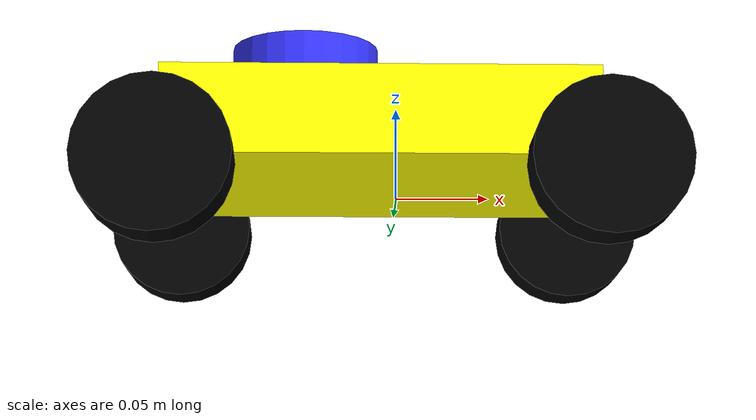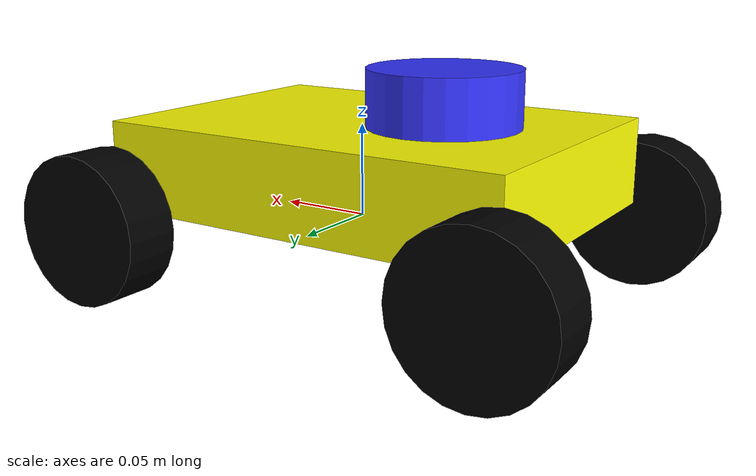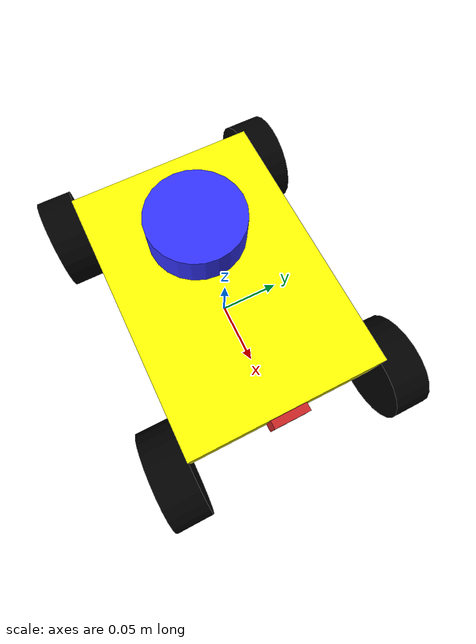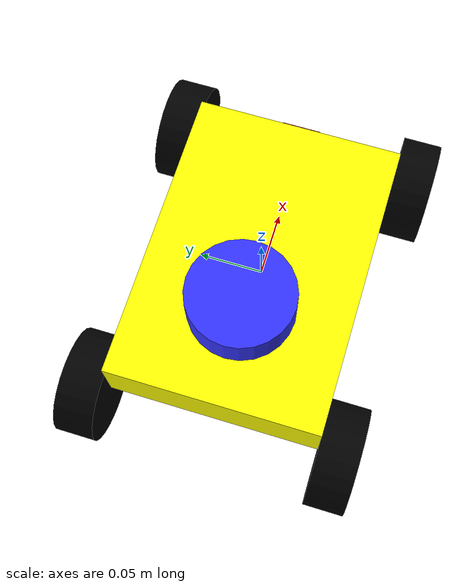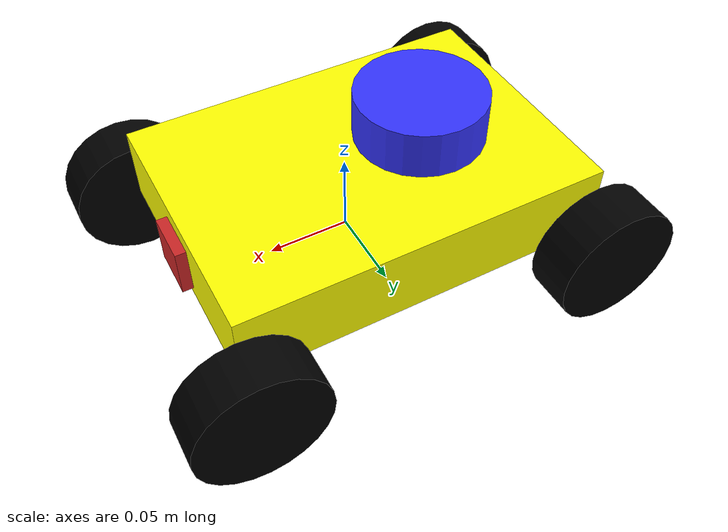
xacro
<?xml version="1.0"?>
<robot xmlns:xacro="http://www.ros.org/wiki/xacro" name="rover">
<xacro:include filename="gazebo_plugins.xacro" />
<xacro:include filename="ros2_control.xacro" />
<xacro:include filename="robot_core2.xacro" />
<xacro:include filename="lidar.xacro" />
<xacro:include filename="camera.xacro" />

</robot>

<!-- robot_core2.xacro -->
<robot xmlns:xacro="http://www.ros.org/wiki/xacro">
<xacro:property name="c1"       value="0.227"/>
<xacro:property name="c2"       value="0.5"/>
<xacro:property name="mass"     value="0.5"/>
<xacro:property name="width"    value="0.16"/>
<xacro:property name="height"   value="0.047"/>
<xacro:property name="depth"    value="0.03 "/>
<xacro:property name="radius"   value="0.04 "/>
    <!-- COLORS -->
    <material name="yellow">
        <color rgba=" 1 1 0 1"/>
    </material>

    <material name="black">
        <color rgba="0 0 0 1"/>
    </material>

    <material name="Blue">
        <color rgba=" 0.2 0.2 1 1"/>
    </material>

    <material name="orange">
        <color rgba="1 0.3 0.1 1"/>
    </material>
    <link name="base_footprint">

    </link>

    <joint name="base_joint" type="fixed">
        <parent link="base_footprint" />
        <child link="base_link" />
        <origin xyz="-0.01 0 0" />
    </joint>

    <link name="base_link">

        <visual>
            <origin xyz="0 0 0.03" />
            <geometry>
                <box size ="0.227 0.16 0.047" />
            </geometry>
            <material name="yellow" />

        </visual>
         <collision>
            <origin xyz="0 0 0.03" />
            <geometry>
                <box size ="0.227 0.16 0.047" />
            </geometry>
        </collision>
        <inertial mass="0.5" x="0.227" y="0.16" z="0.047">
            <mass value="0.5"/>
            <origin xyz="0 0 0.03" rpy="0 0 0" />
            <inertia  ixx="${c1 * mass * (height * height + depth * depth)}" ixy="0.0" ixz="0.0"
                iyy="${c1 * mass * (height * height + depth * depth)}" iyz="0.0"
                izz="${c1 * mass * (height * height + depth * depth)}"/>
        </inertial>
    </link>
    <gazebo reference="base_link">
        <material>Gazebo/yellow</material>
    </gazebo>

    <joint name="wheel_front_left_joint" type="continuous">
        <parent link="base_link" />
        <child link="wheel_front_left_link" />
        <origin xyz="0.1135 0.095 0" rpy="-${pi/2} 0 0" />
        <axis xyz ="0 0 1" />
    </joint>

    <link name="wheel_front_left_link">
        <visual>
            <geometry>
                <cylinder radius="0.04" length="0.03"/>

            </geometry>
            <material name="black" />
        </visual>
        <collision>
            <geometry>
                <cylinder radius="0.04" length="0.03"/>
            </geometry>
        </collision>
        <inertial mass="0.1" length="0.03" radius="0.04">
            <mass value="0.1"/>
            <origin xyz="0 0 0" rpy="0 0 0" />
            <inertia  ixx="${c1 * mass * (height * height + depth * depth)}" ixy="0.0" ixz="0.0"
                iyy="${c1 * mass * (height * height + depth * depth)}" iyz="0.0"
                izz="${c1 * mass * (height * height + depth * depth)}"/>

        </inertial>
    </link>
    <gazebo reference="wheel_front_left_link">
        <material>Gazebo/black</material>
    </gazebo>

    <joint name="wheel_front_right_joint" type="continuous">
        <parent link="base_link" />
        <child link="wheel_front_right_link" />
        <origin xyz="0.1135 -0.095 0" rpy="${pi/2} 0 0" />
        <axis xyz ="0 0 -1" />
    </joint>
    <link name="wheel_front_right_link">
        <visual>
            <geometry>
                <cylinder radius="0.04" length="0.03" />

            </geometry>
            <material name="black" />
        </visual>
         <collision>
            <geometry>
                <cylinder radius="0.04" length="0.03" />
            </geometry>
        </collision>
        <inertial mass="0.1" length="0.03" radius="0.04">
            <mass value="0.1"/>
            <origin xyz="0 0 0" rpy="0 0 0" />
            <inertia  ixx="${c1 * mass * (height * height + depth * depth)}" ixy="0.0" ixz="0.0"
                iyy="${c1 * mass * (height * height + depth * depth)}" iyz="0.0"
                izz="${c1 * mass * (height * height + depth * depth)}"/>

        </inertial>
    </link>
    <gazebo reference="wheel_front_right_link">
        <material>Gazebo/black</material>
    </gazebo>

    <joint name="wheel_rear_left_joint" type="continuous">
        <parent link="base_link" />
        <child link="wheel_rear_left_link" />
        <origin xyz="-0.1135 0.095 0" rpy="-${pi/2} 0 0" />
        <axis xyz ="0 0 1" />
    </joint>
    <link name="wheel_rear_left_link">
        <visual>
            <geometry>
                <cylinder radius="0.04" length="0.03"/>

            </geometry>
            <material name="black" />
        </visual>
        <collision>
            <geometry>
                <cylinder radius="0.04" length="0.03"/>
                <material name="black" />
            </geometry>
        </collision>
        <inertial mass="0.1" length="0.03" radius="0.04">
            <mass value="0.1"/>
            <origin xyz="0 0 0" rpy="0 0 0" />
            <inertia  ixx="${c1 * mass * (height * height + depth * depth)}" ixy="0.0" ixz="0.0"
                iyy="${c1 * mass * (height * height + depth * depth)}" iyz="0.0"
                izz="${c1 * mass * (height * height + depth * depth)}"/>

        </inertial>
    </link>
    <gazebo reference="wheel_rear_left_link">
        <material>Gazebo/black</material>
    </gazebo>

    <joint name="wheel_rear_right_joint" type="continuous">
        <parent link="base_link" />
        <child link="wheel_rear_right_link" />
        <origin xyz="-0.1135 -0.095 0" rpy="${pi/2} 0 0" />
        <axis xyz ="0 0 -1" />
    </joint>
    <link name="wheel_rear_right_link">
        <visual>
            <geometry>
                <cylinder radius="0.04" length="0.03"/>
            </geometry>
            <material name="black" />
        </visual>
        <collision>
            <geometry>
                <cylinder radius="0.04" length="0.03"/>
            </geometry>
        </collision>
        <inertial mass="0.1" length="0.03" radius="0.04">
            <mass value="0.1"/>
            <origin xyz="0 0 0" rpy="0 0 0" />
            <inertia  ixx="${c1 * mass * (height * height + depth * depth)}" ixy="0.0" ixz="0.0"
                iyy="${c1 * mass * (height * height + depth * depth)}" iyz="0.0"
                izz="${c1 * mass * (height * height + depth * depth)}"/>

        </inertial>
    </link>
    <gazebo reference="wheel_rear_right_link">
        <material>Gazebo/black</material>
    </gazebo>

</robot>

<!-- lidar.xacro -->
<robot xmlns:xacro="http://www.ros.org/wiki/xacro" >
    <joint name="laser_joint" type="fixed">
        <parent link="base_footprint" />
        <child link="laser_frame" />
        <origin xyz="-0.05 0 0.0685" rpy="0 0 0" />
    </joint>

    <link name="laser_frame">
        <visual>
            <geometry>
                <cylinder radius="0.04" length="0.03"/>

            </geometry>
            <material name="Blue" />
        </visual>
        <collision>
            <geometry>
                <cylinder radius="0.04" length="0.03"/>
            </geometry>
        </collision>
        <inertial mass="0.1" length="0.03" radius="0.04">
            <mass value="0.1"/>
            <origin xyz="0.1 0 0.1" rpy="0 0 0" />
            <inertia  ixx="${c1 * mass * (height * height + depth * depth)}" ixy="0.0" ixz="0.0"
                iyy="${c1 * mass * (height * height + depth * depth)}" iyz="0.0"
                izz="${c1 * mass * (height * height + depth * depth)}"/>

        </inertial>
    </link>
    <gazebo reference="laser_frame">
        <material>Gazebo/Blue</material>

        <sensor name="laser" type="ray">
            <pose> 0 0 0 0 0 0 </pose>
            <visualize>true</visualize>
            <update_rate>10</update_rate>
            <ray>
                <scan>
                    <horizontal>
                        <samples>360</samples>
                        <min_angle>-3.14</min_angle>
                        <max_angle>3.14</max_angle>
                    </horizontal>
                </scan>
                <range>
                    <min>0.3</min>
                    <max>12</max>
                </range>
            </ray>
            <plugin name="laser_controller" filename="libgazebo_ros_ray_sensor.so">
                <ros>
                    <argument>~/out:=scan</argument>
                </ros>
                <output_type>sensor_msgs/LaserScan</output_type>
                <frame_name>laser_frame</frame_name>
            </plugin>
        </sensor>
    </gazebo>

</robot>

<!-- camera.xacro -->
<robot xmlns:xacro="http://www.ros.org/wiki/xacro" >

   <joint name="camera_joint" type="fixed">
        <parent link="base_link"/>
        <child link="camera_link"/>
        <origin xyz="0.115 0 0.028" rpy="0 0 0"/>
    </joint>

    <link name="camera_link">
        <visual>
            <geometry>
                <box size="0.010 0.03 0.03"/>
            </geometry>
            <material name="red"/>
        </visual>
    </link>
    <joint name="camera_optical_joint" type="fixed">
        <parent link="camera_link"/>
        <child link="camera_link_optical"/>
        <origin xyz="0 0 0" rpy="${-pi/2} 0 ${-pi/2}"/>
    </joint>

    <link name="camera_link_optical"></link>

    <gazebo reference="camera_link">
        <material>Gazebo/Red</material>

        <sensor name="camera" type="depth">
            <pose> 0 0 0 0 0 0 </pose>
            <visualize>true</visualize>
            <update_rate>10</update_rate>
            <camera>
                <horizontal_fov>1.089</horizontal_fov>
                <image>
                    <format>BBG8R8</format>
                    <width>640</width>
                    <height>480</height>
                </image>
                <clip>
                    <near>0.05</near>
                    <far>8.0</far>
                </clip>
            </camera>
            <plugin name="camera_controller" filename="libgazebo_ros_camera.so">
                <frame_name>camera_link_optical</frame_name>
                <min_depth>0.1</min_depth>
                <max_depth>100.0</max_depth>
            </plugin>
        </sensor>
    </gazebo>

</robot>
